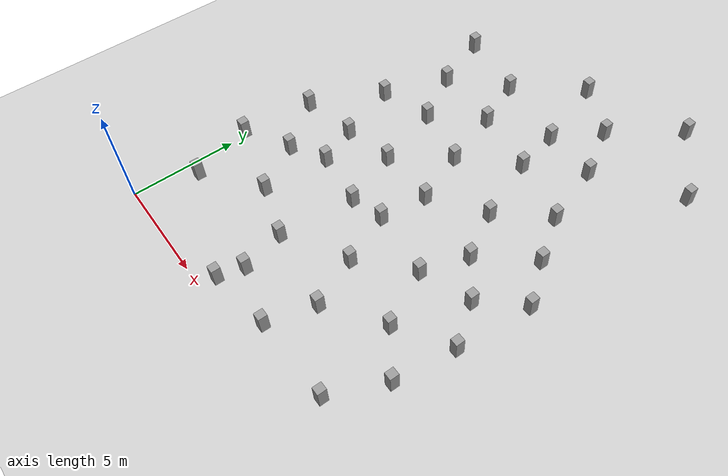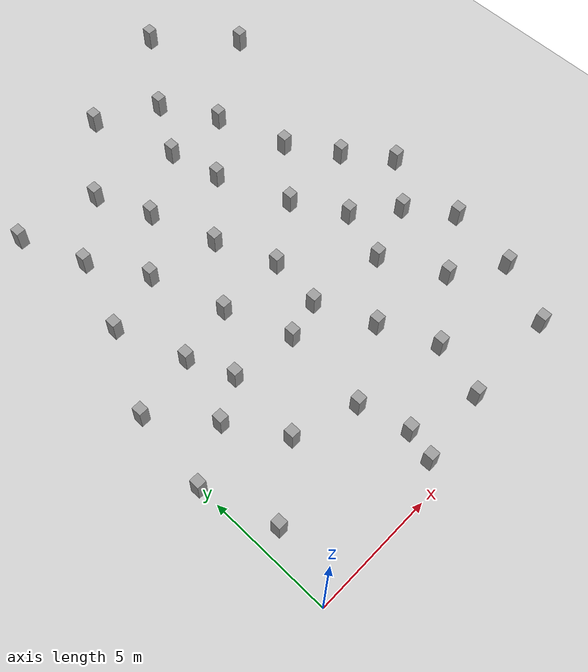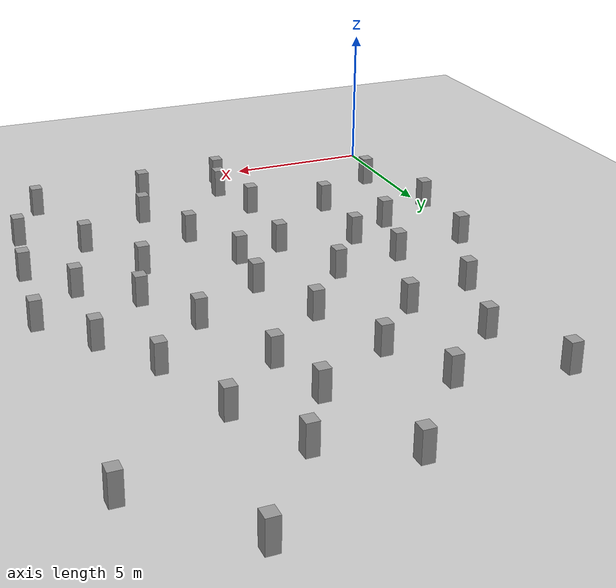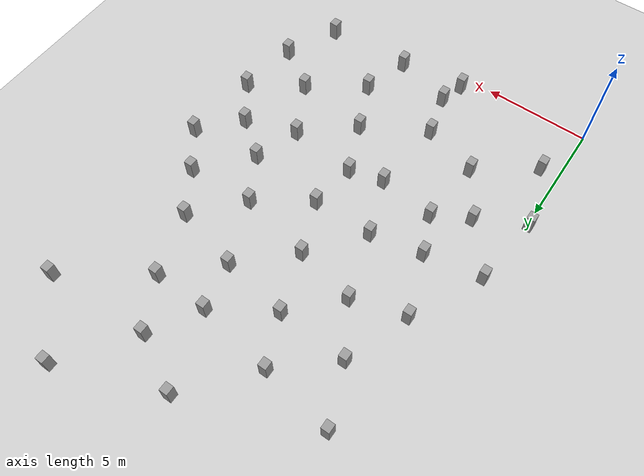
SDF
<sdf version="1.10">
 <world name="obstacle_field">
  <model name="ground_plane">
   <static>true</static>
   <link name="link">
    <collision name="collision">
     <geometry><plane><normal>0 0 1</normal><size>100 100</size></plane></geometry>
     <surface>
      <friction><ode><mu>1000</mu><mu2>1000</mu2><slip1>0</slip1><slip2>0</slip2></ode></friction>
      <bounce><restitution_coefficient>0</restitution_coefficient></bounce>
     </surface>
    </collision>
    <visual name="visual">
     <cast_shadows>false</cast_shadows>
     <geometry><plane><normal>0 0 1</normal><size>100 100</size></plane></geometry>
     <material>
      <script><uri>file://media/materials/scripts/gazebo.material</uri><name>Gazebo/Grey</name></script>
     </material>
    </visual>
    <inertial>
     <mass>1</mass>
     <inertia><ixx>1</ixx><ixy>0</ixy><ixz>0</ixz><iyy>1</iyy><iyz>0</iyz><izz>1</izz></inertia>
    </inertial>
   </link>
  </model>
  <model name="unit_box_0_clone_1">
   <static>true</static>
   <pose>6.2657436504736737 0.77969248417705894 0.50000007797714363 -1.6275317496910021e-11 -4.3435819184663048e-07 -0.00050313957710125773</pose>
   <link name="link">
    <inertial>
     <mass>1</mass>
     <inertia>
      <ixx>0.16666700000000001</ixx>
      <ixy>0</ixy>
      <ixz>0</ixz>
      <iyy>0.16666700000000001</iyy>
      <iyz>0</iyz>
      <izz>0.16666700000000001</izz>
     </inertia>
    </inertial>
    <collision name="collision">
     <geometry><box><size>0.392878 0.42264299999999999 1</size></box></geometry>
    </collision>
    <visual name="visual">
     <geometry><box><size>0.392878 0.42264299999999999 1</size></box></geometry>
     <material>
      <script><name>Gazebo/Grey</name><uri>file://media/materials/scripts/gazebo.material</uri></script>
     </material>
    </visual>
   </link>
  </model>
  <model name="unit_box_0_clone_5">
   <static>true</static>
   <pose>6.5936288833618164 1.9747054576873777 0.50000000000000011 1.4519074795443774e-11 5.7575513409192599e-07 -0.00056817313018064084</pose>
   <link name="link">
    <inertial>
     <mass>1</mass>
     <inertia>
      <ixx>0.16666700000000001</ixx>
      <ixy>0</ixy>
      <ixz>0</ixz>
      <iyy>0.16666700000000001</iyy>
      <iyz>0</iyz>
      <izz>0.16666700000000001</izz>
     </inertia>
    </inertial>
    <collision name="collision">
     <geometry><box><size>0.392878 0.42264299999999999 1</size></box></geometry>
    </collision>
    <visual name="visual">
     <geometry><box><size>0.392878 0.42264299999999999 1</size></box></geometry>
     <material>
      <script><name>Gazebo/Grey</name><uri>file://media/materials/scripts/gazebo.material</uri></script>
     </material>
    </visual>
   </link>
  </model>
  <model name="unit_box_0_clone_5_clone">
   <static>true</static>
   <pose>9.3323705005976016 1.1743509997080097 0.49999999632621162 5.2793814997311371e-13 -5.7080690061872796e-13 -0.00059524702849138831</pose>
   <link name="link">
    <inertial>
     <mass>1</mass>
     <inertia>
      <ixx>0.16666700000000001</ixx>
      <ixy>0</ixy>
      <ixz>0</ixz>
      <iyy>0.16666700000000001</iyy>
      <iyz>0</iyz>
      <izz>0.16666700000000001</izz>
     </inertia>
    </inertial>
    <collision name="collision">
     <geometry><box><size>0.392878 0.42264299999999999 1</size></box></geometry>
    </collision>
    <visual name="visual">
     <geometry><box><size>0.392878 0.42264299999999999 1</size></box></geometry>
     <material>
      <script><name>Gazebo/Grey</name><uri>file://media/materials/scripts/gazebo.material</uri></script>
     </material>
    </visual>
   </link>
  </model>
  <model name="unit_box_0_clone_5_clone_0">
   <static>true</static>
   <pose>6.0699167251586905 3.9886112213134766 0.49999880790710455 -6.4980011606417069e-08 -1.2996003264999317e-07 -0.00059701014650511103</pose>
   <link name="link">
    <inertial>
     <mass>1</mass>
     <inertia>
      <ixx>0.16666700000000001</ixx>
      <ixy>0</ixy>
      <ixz>0</ixz>
      <iyy>0.16666700000000001</iyy>
      <iyz>0</iyz>
      <izz>0.16666700000000001</izz>
     </inertia>
    </inertial>
    <collision name="collision">
     <geometry><box><size>0.392878 0.42264299999999999 1</size></box></geometry>
    </collision>
    <visual name="visual">
     <geometry><box><size>0.392878 0.42264299999999999 1</size></box></geometry>
     <material>
      <script><name>Gazebo/Grey</name><uri>file://media/materials/scripts/gazebo.material</uri></script>
     </material>
    </visual>
   </link>
  </model>
  <model name="unit_box_0_clone_5_clone_2_clone">
   <static>true</static>
   <pose>13.357701301574707 1.3140759468078616 0.50000154972076394 5.3031405220818341e-07 1.6416701695930004e-07 -0.00069378602791120086</pose>
   <link name="link">
    <inertial>
     <mass>1</mass>
     <inertia>
      <ixx>0.16666700000000001</ixx>
      <ixy>0</ixy>
      <ixz>0</ixz>
      <iyy>0.16666700000000001</iyy>
      <iyz>0</iyz>
      <izz>0.16666700000000001</izz>
     </inertia>
    </inertial>
    <collision name="collision">
     <geometry><box><size>0.392878 0.42264299999999999 1</size></box></geometry>
    </collision>
    <visual name="visual">
     <geometry><box><size>0.392878 0.42264299999999999 1</size></box></geometry>
     <material>
      <script><name>Gazebo/Grey</name><uri>file://media/materials/scripts/gazebo.material</uri></script>
     </material>
    </visual>
   </link>
  </model>
  <model name="unit_box_0_clone_5_clone_2_clone_4">
   <static>true</static>
   <pose>14.512412071228029 3.8057172298431405 0.49999919533729553 -1.4207401016797583e-07 -5.6431707507392635e-08 -0.00075502010828045992</pose>
   <link name="link">
    <inertial>
     <mass>1</mass>
     <inertia>
      <ixx>0.16666700000000001</ixx>
      <ixy>0</ixy>
      <ixz>0</ixz>
      <iyy>0.16666700000000001</iyy>
      <iyz>0</iyz>
      <izz>0.16666700000000001</izz>
     </inertia>
    </inertial>
    <collision name="collision">
     <geometry><box><size>0.392878 0.42264299999999999 1</size></box></geometry>
    </collision>
    <visual name="visual">
     <geometry><box><size>0.392878 0.42264299999999999 1</size></box></geometry>
     <material>
      <script><name>Gazebo/Grey</name><uri>file://media/materials/scripts/gazebo.material</uri></script>
     </material>
    </visual>
   </link>
  </model>
  <model name="unit_box_0_clone_5_clone_2_clone_6">
   <static>true</static>
   <pose>9.9725370407104474 3.414785623550415 0.49999925494194025 -1.0111800399782683e-07 -2.2782001280568572e-07 -0.00061600903908471728</pose>
   <link name="link">
    <inertial>
     <mass>1</mass>
     <inertia>
      <ixx>0.16666700000000001</ixx>
      <ixy>0</ixy>
      <ixz>0</ixz>
      <iyy>0.16666700000000001</iyy>
      <iyz>0</iyz>
      <izz>0.16666700000000001</izz>
     </inertia>
    </inertial>
    <collision name="collision">
     <geometry><box><size>0.392878 0.42264299999999999 1</size></box></geometry>
    </collision>
    <visual name="visual">
     <geometry><box><size>0.392878 0.42264299999999999 1</size></box></geometry>
     <material>
      <script><name>Gazebo/Grey</name><uri>file://media/materials/scripts/gazebo.material</uri></script>
     </material>
    </visual>
   </link>
  </model>
  <model name="unit_box_0_clone_5_clone_2_clone_1_clone_12_clone">
   <static>true</static>
   <pose>8.9821994995991616 5.6659995003911803 0.49999999632620984 -5.3647321036996375e-13 5.7486298194397711e-13 -0.00079258288375717531</pose>
   <link name="link">
    <inertial>
     <mass>1</mass>
     <inertia>
      <ixx>0.16666700000000001</ixx>
      <ixy>0</ixy>
      <ixz>0</ixz>
      <iyy>0.16666700000000001</iyy>
      <iyz>0</iyz>
      <izz>0.16666700000000001</izz>
     </inertia>
    </inertial>
    <collision name="collision">
     <geometry><box><size>0.392878 0.42264299999999999 1</size></box></geometry>
    </collision>
    <visual name="visual">
     <geometry><box><size>0.392878 0.42264299999999999 1</size></box></geometry>
     <material>
      <script><name>Gazebo/Grey</name><uri>file://media/materials/scripts/gazebo.material</uri></script>
     </material>
    </visual>
   </link>
  </model>
  <model name="unit_box_0_clone_5_clone_2_clone_1_clone_12_clone_0">
   <static>true</static>
   <pose>11.232299499207203 7.6263990003841595 0.49999999632621162 -5.3284593403060476e-13 5.6859901922787468e-13 -0.00078857408980502919</pose>
   <link name="link">
    <inertial>
     <mass>1</mass>
     <inertia>
      <ixx>0.16666700000000001</ixx>
      <ixy>0</ixy>
      <ixz>0</ixz>
      <iyy>0.16666700000000001</iyy>
      <iyz>0</iyz>
      <izz>0.16666700000000001</izz>
     </inertia>
    </inertial>
    <collision name="collision">
     <geometry><box><size>0.392878 0.42264299999999999 1</size></box></geometry>
    </collision>
    <visual name="visual">
     <geometry><box><size>0.392878 0.42264299999999999 1</size></box></geometry>
     <material>
      <script><name>Gazebo/Grey</name><uri>file://media/materials/scripts/gazebo.material</uri></script>
     </material>
    </visual>
   </link>
  </model>
  <model name="unit_box_0_clone_5_clone_2_clone_1_clone_12_clone_1">
   <static>true</static>
   <pose>8.0000010004007294 8.0000004992226383 0.49999999632621162 5.3360800315507531e-13 -5.7750973295664675e-13 -0.00078256106634871578</pose>
   <link name="link">
    <inertial>
     <mass>1</mass>
     <inertia>
      <ixx>0.16666700000000001</ixx>
      <ixy>0</ixy>
      <ixz>0</ixz>
      <iyy>0.16666700000000001</iyy>
      <iyz>0</iyz>
      <izz>0.16666700000000001</izz>
     </inertia>
    </inertial>
    <collision name="collision">
     <geometry><box><size>0.392878 0.42264299999999999 1</size></box></geometry>
    </collision>
    <visual name="visual">
     <geometry><box><size>0.392878 0.42264299999999999 1</size></box></geometry>
     <material>
      <script><name>Gazebo/Grey</name><uri>file://media/materials/scripts/gazebo.material</uri></script>
     </material>
    </visual>
   </link>
  </model>
  <model name="unit_box_0_clone_5_clone_2_clone_1_clone_12_clone_2">
   <static>true</static>
   <pose>11.942601000394943 9.7839104992335333 0.49999999632621162 5.3619946354806981e-13 -5.6966116221189122e-13 -0.00077153770491132374</pose>
   <link name="link">
    <inertial>
     <mass>1</mass>
     <inertia>
      <ixx>0.16666700000000001</ixx>
      <ixy>0</ixy>
      <ixz>0</ixz>
      <iyy>0.16666700000000001</iyy>
      <iyz>0</iyz>
      <izz>0.16666700000000001</izz>
     </inertia>
    </inertial>
    <collision name="collision">
     <geometry><box><size>0.392878 0.42264299999999999 1</size></box></geometry>
    </collision>
    <visual name="visual">
     <geometry><box><size>0.392878 0.42264299999999999 1</size></box></geometry>
     <material>
      <script><name>Gazebo/Grey</name><uri>file://media/materials/scripts/gazebo.material</uri></script>
     </material>
    </visual>
   </link>
  </model>
  <model name="unit_box_0_clone_5_clone_2_clone_1_clone_12_clone_5">
   <static>true</static>
   <pose>14.920901001522996 6.663131999258403 0.49999999632621001 5.3630661169372259e-13 -5.6729505497022143e-13 -0.00075851093868693059</pose>
   <link name="link">
    <inertial>
     <mass>1</mass>
     <inertia>
      <ixx>0.16666700000000001</ixx>
      <ixy>0</ixy>
      <ixz>0</ixz>
      <iyy>0.16666700000000001</iyy>
      <iyz>0</iyz>
      <izz>0.16666700000000001</izz>
     </inertia>
    </inertial>
    <collision name="collision">
     <geometry><box><size>0.392878 0.42264299999999999 1</size></box></geometry>
    </collision>
    <visual name="visual">
     <geometry><box><size>0.392878 0.42264299999999999 1</size></box></geometry>
     <material>
      <script><name>Gazebo/Grey</name><uri>file://media/materials/scripts/gazebo.material</uri></script>
     </material>
    </visual>
   </link>
  </model>
  <model name="unit_box_0_clone_5_clone_2_clone_1_clone_12_clone_7">
   <static>true</static>
   <pose>7.3004302978515625 12.65896511077881 0.49998185038566578 1.4009700984735096e-06 -1.9607301620356381e-06 -0.00074300406336154769</pose>
   <link name="link">
    <inertial>
     <mass>1</mass>
     <inertia>
      <ixx>0.16666700000000001</ixx>
      <ixy>0</ixy>
      <ixz>0</ixz>
      <iyy>0.16666700000000001</iyy>
      <iyz>0</iyz>
      <izz>0.16666700000000001</izz>
     </inertia>
    </inertial>
    <collision name="collision">
     <geometry><box><size>0.392878 0.42264299999999999 1</size></box></geometry>
    </collision>
    <visual name="visual">
     <geometry><box><size>0.392878 0.42264299999999999 1</size></box></geometry>
     <material>
      <script><name>Gazebo/Grey</name><uri>file://media/materials/scripts/gazebo.material</uri></script>
     </material>
    </visual>
   </link>
  </model>
  <model name="unit_box_0_clone_5_clone_2_clone_1_clone_12_clone_32">
   <static>true</static>
   <pose>12.524538040161133 5.1650052070617685 0.49997285008430487 -1.3707601376378838e-06 -1.9236901632101691e-06 -0.00072800405564673579</pose>
   <link name="link">
    <inertial>
     <mass>1</mass>
     <inertia>
      <ixx>0.16666700000000001</ixx>
      <ixy>0</ixy>
      <ixz>0</ixz>
      <iyy>0.16666700000000001</iyy>
      <iyz>0</iyz>
      <izz>0.16666700000000001</izz>
     </inertia>
    </inertial>
    <collision name="collision">
     <geometry><box><size>0.392878 0.42264299999999999 1</size></box></geometry>
    </collision>
    <visual name="visual">
     <geometry><box><size>0.392878 0.42264299999999999 1</size></box></geometry>
     <material>
      <script><name>Gazebo/Grey</name><uri>file://media/materials/scripts/gazebo.material</uri></script>
     </material>
    </visual>
   </link>
  </model>
  <model name="unit_box_0_clone_5_clone_2_clone_1_clone_12_clone_42">
   <static>true</static>
   <pose>3.4964911146828856 4.7998195501831429 0.49999991137006861 -1.0214082627106175e-07 2.3012329665167675e-07 -0.00079101881016747097</pose>
   <link name="link">
    <inertial>
     <mass>1</mass>
     <inertia>
      <ixx>0.16666700000000001</ixx>
      <ixy>0</ixy>
      <ixz>0</ixz>
      <iyy>0.16666700000000001</iyy>
      <iyz>0</iyz>
      <izz>0.16666700000000001</izz>
     </inertia>
    </inertial>
    <collision name="collision">
     <geometry><box><size>0.392878 0.42264299999999999 1</size></box></geometry>
    </collision>
    <visual name="visual">
     <geometry><box><size>0.392878 0.42264299999999999 1</size></box></geometry>
     <material>
      <script><name>Gazebo/Grey</name><uri>file://media/materials/scripts/gazebo.material</uri></script>
     </material>
    </visual>
   </link>
  </model>
  <model name="unit_box_0_clone_5_clone_2_clone_1_clone_12_clone_43">
   <static>true</static>
   <pose>6.4073395008018883 7.5782010004138494 0.49999999632621162 5.3324726528305473e-13 5.749989376156238e-13 -0.00080761666104334738</pose>
   <link name="link">
    <inertial>
     <mass>1</mass>
     <inertia>
      <ixx>0.16666700000000001</ixx>
      <ixy>0</ixy>
      <ixz>0</ixz>
      <iyy>0.16666700000000001</iyy>
      <iyz>0</iyz>
      <izz>0.16666700000000001</izz>
     </inertia>
    </inertial>
    <collision name="collision">
     <geometry><box><size>0.392878 0.42264299999999999 1</size></box></geometry>
    </collision>
    <visual name="visual">
     <geometry><box><size>0.392878 0.42264299999999999 1</size></box></geometry>
     <material>
      <script><name>Gazebo/Grey</name><uri>file://media/materials/scripts/gazebo.material</uri></script>
     </material>
    </visual>
   </link>
  </model>
  <model name="unit_box_0_clone_5_clone_2_clone_1_clone_12_clone_44">
   <static>true</static>
   <pose>3.7579500012270137 7.9207315000161067 0.49999999632621167 5.3637849946104813e-13 1.3830856559574883e-14 -0.00081864224207135532</pose>
   <link name="link">
    <inertial>
     <mass>1</mass>
     <inertia>
      <ixx>0.16666700000000001</ixx>
      <ixy>0</ixy>
      <ixz>0</ixz>
      <iyy>0.16666700000000001</iyy>
      <iyz>0</iyz>
      <izz>0.16666700000000001</izz>
     </inertia>
    </inertial>
    <collision name="collision">
     <geometry><box><size>0.392878 0.42264299999999999 1</size></box></geometry>
    </collision>
    <visual name="visual">
     <geometry><box><size>0.392878 0.42264299999999999 1</size></box></geometry>
     <material>
      <script><name>Gazebo/Grey</name><uri>file://media/materials/scripts/gazebo.material</uri></script>
     </material>
    </visual>
   </link>
  </model>
  <model name="unit_box_0_clone_5_clone_2_clone_1_clone_12_clone_45">
   <static>true</static>
   <pose>8.2731595008177425 10.215901000422265 0.49999999632621162 5.2878707308363834e-13 5.7475724972589635e-13 -0.00082365410174699272</pose>
   <link name="link">
    <inertial>
     <mass>1</mass>
     <inertia>
      <ixx>0.16666700000000001</ixx>
      <ixy>0</ixy>
      <ixz>0</ixz>
      <iyy>0.16666700000000001</iyy>
      <iyz>0</iyz>
      <izz>0.16666700000000001</izz>
     </inertia>
    </inertial>
    <collision name="collision">
     <geometry><box><size>0.392878 0.42264299999999999 1</size></box></geometry>
    </collision>
    <visual name="visual">
     <geometry><box><size>0.392878 0.42264299999999999 1</size></box></geometry>
     <material>
      <script><name>Gazebo/Grey</name><uri>file://media/materials/scripts/gazebo.material</uri></script>
     </material>
    </visual>
   </link>
  </model>
  <model name="unit_box_0_clone_5_clone_2_clone_1_clone_12_clone_46">
   <static>true</static>
   <pose>5.4269299987535122 10.214698499983404 0.49999999632621167 -5.3231316036218239e-13 -1.4504192305665496e-14 -0.00083167337703285253</pose>
   <link name="link">
    <inertial>
     <mass>1</mass>
     <inertia>
      <ixx>0.16666700000000001</ixx>
      <ixy>0</ixy>
      <ixz>0</ixz>
      <iyy>0.16666700000000001</iyy>
      <iyz>0</iyz>
      <izz>0.16666700000000001</izz>
     </inertia>
    </inertial>
    <collision name="collision">
     <geometry><box><size>0.392878 0.42264299999999999 1</size></box></geometry>
    </collision>
    <visual name="visual">
     <geometry><box><size>0.392878 0.42264299999999999 1</size></box></geometry>
     <material>
      <script><name>Gazebo/Grey</name><uri>file://media/materials/scripts/gazebo.material</uri></script>
     </material>
    </visual>
   </link>
  </model>
  <model name="unit_box_0_clone_5_clone_2_clone_1_clone_12_clone_13_clone">
   <static>true</static>
   <pose>15.288198499390868 10.223198500602853 0.49999999632621051 -5.2769447487419605e-13 5.7025126058812261e-13 -0.00040407729822959112</pose>
   <link name="link">
    <inertial>
     <mass>1</mass>
     <inertia>
      <ixx>0.16666700000000001</ixx>
      <ixy>0</ixy>
      <ixz>0</ixz>
      <iyy>0.16666700000000001</iyy>
      <iyz>0</iyz>
      <izz>0.16666700000000001</izz>
     </inertia>
    </inertial>
    <collision name="collision">
     <geometry><box><size>0.392878 0.42264299999999999 1</size></box></geometry>
    </collision>
    <visual name="visual">
     <geometry><box><size>0.392878 0.42264299999999999 1</size></box></geometry>
     <material>
      <script><name>Gazebo/Grey</name><uri>file://media/materials/scripts/gazebo.material</uri></script>
     </material>
    </visual>
   </link>
  </model>
  <model name="unit_box_0_clone_5_clone_2_clone_1_clone_12_clone_13_clone_14">
   <static>true</static>
   <pose>13.646501000179812 8.4495604996447309 0.49999999632621162 5.3172888879950636e-13 -5.6795361903593215e-13 -0.00035605288904595999</pose>
   <link name="link">
    <inertial>
     <mass>1</mass>
     <inertia>
      <ixx>0.16666700000000001</ixx>
      <ixy>0</ixy>
      <ixz>0</ixz>
      <iyy>0.16666700000000001</iyy>
      <iyz>0</iyz>
      <izz>0.16666700000000001</izz>
     </inertia>
    </inertial>
    <collision name="collision">
     <geometry><box><size>0.392878 0.42264299999999999 1</size></box></geometry>
    </collision>
    <visual name="visual">
     <geometry><box><size>0.392878 0.42264299999999999 1</size></box></geometry>
     <material>
      <script><name>Gazebo/Grey</name><uri>file://media/materials/scripts/gazebo.material</uri></script>
     </material>
    </visual>
   </link>
  </model>
  <model name="unit_box_0_clone_5_clone_2_clone_1_clone_12_clone_13_clone_15">
   <static>true</static>
   <pose>13.926002000350211 12.043700999307257 0.49999999632621156 5.3480945032059843e-13 -5.7447730007873074e-13 -0.00034704897654339598</pose>
   <link name="link">
    <inertial>
     <mass>1</mass>
     <inertia>
      <ixx>0.16666700000000001</ixx>
      <ixy>0</ixy>
      <ixz>0</ixz>
      <iyy>0.16666700000000001</iyy>
      <iyz>0</iyz>
      <izz>0.16666700000000001</izz>
     </inertia>
    </inertial>
    <collision name="collision">
     <geometry><box><size>0.392878 0.42264299999999999 1</size></box></geometry>
    </collision>
    <visual name="visual">
     <geometry><box><size>0.392878 0.42264299999999999 1</size></box></geometry>
     <material>
      <script><name>Gazebo/Grey</name><uri>file://media/materials/scripts/gazebo.material</uri></script>
     </material>
    </visual>
   </link>
  </model>
  <model name="unit_box_0_clone_5_clone_2_clone_1_clone_12_clone_13_clone_16">
   <static>true</static>
   <pose>10.735701000695252 11.877701999656198 0.49999999632620995 5.3337369665107648e-13 -5.7132845563975111e-13 -0.00034704897244808433</pose>
   <link name="link">
    <inertial>
     <mass>1</mass>
     <inertia>
      <ixx>0.16666700000000001</ixx>
      <ixy>0</ixy>
      <ixz>0</ixz>
      <iyy>0.16666700000000001</iyy>
      <iyz>0</iyz>
      <izz>0.16666700000000001</izz>
     </inertia>
    </inertial>
    <collision name="collision">
     <geometry><box><size>0.392878 0.42264299999999999 1</size></box></geometry>
    </collision>
    <visual name="visual">
     <geometry><box><size>0.392878 0.42264299999999999 1</size></box></geometry>
     <material>
      <script><name>Gazebo/Grey</name><uri>file://media/materials/scripts/gazebo.material</uri></script>
     </material>
    </visual>
   </link>
  </model>
  <model name="unit_box_0_clone_5_clone_2_clone_1_clone_12_clone_13_clone_11">
   <static>true</static>
   <pose>12.643399500039219 14.036800500038725 0.49999999632620984 5.3345711205326479e-13 5.7388034953694342e-13 -7.8000556715596608e-05</pose>
   <link name="link">
    <inertial>
     <mass>1</mass>
     <inertia>
      <ixx>0.16666700000000001</ixx>
      <ixy>0</ixy>
      <ixz>0</ixz>
      <iyy>0.16666700000000001</iyy>
      <iyz>0</iyz>
      <izz>0.16666700000000001</izz>
     </inertia>
    </inertial>
    <collision name="collision">
     <geometry><box><size>0.392878 0.42264299999999999 1</size></box></geometry>
    </collision>
    <visual name="visual">
     <geometry><box><size>0.392878 0.42264299999999999 1</size></box></geometry>
     <material>
      <script><name>Gazebo/Grey</name><uri>file://media/materials/scripts/gazebo.material</uri></script>
     </material>
    </visual>
   </link>
  </model>
  <model name="unit_box_0_clone_5_clone_2_clone_1_clone_12_clone_13_clone_28">
   <static>true</static>
   <pose>9.547730499918778 14.859598999959712 0.49999999632621162 -5.3428732410458437e-13 -5.7036266165558847e-13 -8.1000623926185745e-05</pose>
   <link name="link">
    <inertial>
     <mass>1</mass>
     <inertia>
      <ixx>0.16666700000000001</ixx>
      <ixy>0</ixy>
      <ixz>0</ixz>
      <iyy>0.16666700000000001</iyy>
      <iyz>0</iyz>
      <izz>0.16666700000000001</izz>
     </inertia>
    </inertial>
    <collision name="collision">
     <geometry><box><size>0.392878 0.42264299999999999 1</size></box></geometry>
    </collision>
    <visual name="visual">
     <geometry><box><size>0.392878 0.42264299999999999 1</size></box></geometry>
     <material>
      <script><name>Gazebo/Grey</name><uri>file://media/materials/scripts/gazebo.material</uri></script>
     </material>
    </visual>
   </link>
  </model>
  <model name="unit_box_0_clone_5_clone_2_clone_1_clone_12_clone_13_clone_50">
   <static>true</static>
   <pose>0.85602056145324557 2.8650628048964313 0.49999991312564068 3.3647760914909713e-09 2.5287479178355659e-09 -0.00016000481654438443</pose>
   <link name="link">
    <inertial>
     <mass>1</mass>
     <inertia>
      <ixx>0.16666700000000001</ixx>
      <ixy>0</ixy>
      <ixz>0</ixz>
      <iyy>0.16666700000000001</iyy>
      <iyz>0</iyz>
      <izz>0.16666700000000001</izz>
     </inertia>
    </inertial>
    <collision name="collision">
     <geometry><box><size>0.392878 0.42264299999999999 1</size></box></geometry>
    </collision>
    <visual name="visual">
     <geometry><box><size>0.392878 0.42264299999999999 1</size></box></geometry>
     <material>
      <script><name>Gazebo/Grey</name><uri>file://media/materials/scripts/gazebo.material</uri></script>
     </material>
    </visual>
   </link>
  </model>
  <model name="unit_box_0_clone_5_clone_2_clone_1_clone_12_clone_13_clone_51">
   <static>true</static>
   <pose>2.127969000327985 6.9942020001644822 0.49999999632620995 5.3094330337904799e-13 5.7202125579093984e-13 -0.00016400517627406612</pose>
   <link name="link">
    <inertial>
     <mass>1</mass>
     <inertia>
      <ixx>0.16666700000000001</ixx>
      <ixy>0</ixy>
      <ixz>0</ixz>
      <iyy>0.16666700000000001</iyy>
      <iyz>0</iyz>
      <izz>0.16666700000000001</izz>
     </inertia>
    </inertial>
    <collision name="collision">
     <geometry><box><size>0.392878 0.42264299999999999 1</size></box></geometry>
    </collision>
    <visual name="visual">
     <geometry><box><size>0.392878 0.42264299999999999 1</size></box></geometry>
     <material>
      <script><name>Gazebo/Grey</name><uri>file://media/materials/scripts/gazebo.material</uri></script>
     </material>
    </visual>
   </link>
  </model>
  <model name="unit_box_0_clone_5_clone_2_clone_1_clone_12_clone_13_clone_52">
   <static>true</static>
   <pose>3.0064895001640823 9.7206410000821304 0.49999999632621162 5.3025598981966204e-13 5.7706687666036585e-13 -0.00016400517094457758</pose>
   <link name="link">
    <inertial>
     <mass>1</mass>
     <inertia>
      <ixx>0.16666700000000001</ixx>
      <ixy>0</ixy>
      <ixz>0</ixz>
      <iyy>0.16666700000000001</iyy>
      <iyz>0</iyz>
      <izz>0.16666700000000001</izz>
     </inertia>
    </inertial>
    <collision name="collision">
     <geometry><box><size>0.392878 0.42264299999999999 1</size></box></geometry>
    </collision>
    <visual name="visual">
     <geometry><box><size>0.392878 0.42264299999999999 1</size></box></geometry>
     <material>
      <script><name>Gazebo/Grey</name><uri>file://media/materials/scripts/gazebo.material</uri></script>
     </material>
    </visual>
   </link>
  </model>
  <model name="unit_box_0_clone_5_clone_2_clone_1_clone_12_clone_13_clone_53">
   <static>true</static>
   <pose>4.4691519997544846 13.275998499671825 0.49999999632621067 -5.3253163205396491e-13 -5.7053971584299667e-13 -0.00016400517495651585</pose>
   <link name="link">
    <inertial>
     <mass>1</mass>
     <inertia>
      <ixx>0.16666700000000001</ixx>
      <ixy>0</ixy>
      <ixz>0</ixz>
      <iyy>0.16666700000000001</iyy>
      <iyz>0</iyz>
      <izz>0.16666700000000001</izz>
     </inertia>
    </inertial>
    <collision name="collision">
     <geometry><box><size>0.392878 0.42264299999999999 1</size></box></geometry>
    </collision>
    <visual name="visual">
     <geometry><box><size>0.392878 0.42264299999999999 1</size></box></geometry>
     <material>
      <script><name>Gazebo/Grey</name><uri>file://media/materials/scripts/gazebo.material</uri></script>
     </material>
    </visual>
   </link>
  </model>
  <model name="unit_box_0_clone_5_clone_2_clone_1_clone_12_clone_13_clone_54">
   <static>true</static>
   <pose>6.4051190003278986 15.385902000164434 0.49999999632620995 5.3094315722373402e-13 5.7201973443328702e-13 -0.00016400517627406595</pose>
   <link name="link">
    <inertial>
     <mass>1</mass>
     <inertia>
      <ixx>0.16666700000000001</ixx>
      <ixy>0</ixy>
      <ixz>0</ixz>
      <iyy>0.16666700000000001</iyy>
      <iyz>0</iyz>
      <izz>0.16666700000000001</izz>
     </inertia>
    </inertial>
    <collision name="collision">
     <geometry><box><size>0.392878 0.42264299999999999 1</size></box></geometry>
    </collision>
    <visual name="visual">
     <geometry><box><size>0.392878 0.42264299999999999 1</size></box></geometry>
     <material>
      <script><name>Gazebo/Grey</name><uri>file://media/materials/scripts/gazebo.material</uri></script>
     </material>
    </visual>
   </link>
  </model>
  <model name="unit_box_0_clone_5_clone_2_clone_1_clone_12_clone_13_clone_55">
   <static>true</static>
   <pose>11.690300999668057 16.970197999833186 0.49999999632620995 -5.3273167757785956e-13 -5.7176937348012523e-13 -0.00016600536773818064</pose>
   <link name="link">
    <inertial>
     <mass>1</mass>
     <inertia>
      <ixx>0.16666700000000001</ixx>
      <ixy>0</ixy>
      <ixz>0</ixz>
      <iyy>0.16666700000000001</iyy>
      <iyz>0</iyz>
      <izz>0.16666700000000001</izz>
     </inertia>
    </inertial>
    <collision name="collision">
     <geometry><box><size>0.392878 0.42264299999999999 1</size></box></geometry>
    </collision>
    <visual name="visual">
     <geometry><box><size>0.392878 0.42264299999999999 1</size></box></geometry>
     <material>
      <script><name>Gazebo/Grey</name><uri>file://media/materials/scripts/gazebo.material</uri></script>
     </material>
    </visual>
   </link>
  </model>
  <model name="unit_box_0_clone_5_clone_2_clone_1_clone_12_clone_13_clone_68">
   <static>true</static>
   <pose>-0.073402999781999934 5.8226310000004871 0.49999999632620978 5.3616162941209065e-13 1.7981183318364764e-16 -0.00021801214321377763</pose>
   <link name="link">
    <inertial>
     <mass>1</mass>
     <inertia>
      <ixx>0.16666700000000001</ixx>
      <ixy>0</ixy>
      <ixz>0</ixz>
      <iyy>0.16666700000000001</iyy>
      <iyz>0</iyz>
      <izz>0.16666700000000001</izz>
     </inertia>
    </inertial>
    <collision name="collision">
     <geometry><box><size>0.392878 0.42264299999999999 1</size></box></geometry>
    </collision>
    <visual name="visual">
     <geometry><box><size>0.392878 0.42264299999999999 1</size></box></geometry>
     <material>
      <script><name>Gazebo/Grey</name><uri>file://media/materials/scripts/gazebo.material</uri></script>
     </material>
    </visual>
   </link>
  </model>
  <model name="unit_box_0_clone_5_clone_2_clone_1_clone_12_clone_13_clone_69">
   <static>true</static>
   <pose>0.34026949977811405 9.2201289998885034 0.49999999632621162 -5.3077854673032423e-13 -5.7209508243760987e-13 -0.00022201282509552153</pose>
   <link name="link">
    <inertial>
     <mass>1</mass>
     <inertia>
      <ixx>0.16666700000000001</ixx>
      <ixy>0</ixy>
      <ixz>0</ixz>
      <iyy>0.16666700000000001</iyy>
      <iyz>0</iyz>
      <izz>0.16666700000000001</izz>
     </inertia>
    </inertial>
    <collision name="collision">
     <geometry><box><size>0.392878 0.42264299999999999 1</size></box></geometry>
    </collision>
    <visual name="visual">
     <geometry><box><size>0.392878 0.42264299999999999 1</size></box></geometry>
     <material>
      <script><name>Gazebo/Grey</name><uri>file://media/materials/scripts/gazebo.material</uri></script>
     </material>
    </visual>
   </link>
  </model>
  <model name="unit_box_0_clone_5_clone_2_clone_1_clone_12_clone_13_clone_70">
   <static>true</static>
   <pose>2.0042095003418772 12.540901500114936 0.49999999632621078 5.2914627715072209e-13 5.7139694200659904e-13 -0.00022801389384564976</pose>
   <link name="link">
    <inertial>
     <mass>1</mass>
     <inertia>
      <ixx>0.16666700000000001</ixx>
      <ixy>0</ixy>
      <ixz>0</ixz>
      <iyy>0.16666700000000001</iyy>
      <iyz>0</iyz>
      <izz>0.16666700000000001</izz>
     </inertia>
    </inertial>
    <collision name="collision">
     <geometry><box><size>0.392878 0.42264299999999999 1</size></box></geometry>
    </collision>
    <visual name="visual">
     <geometry><box><size>0.392878 0.42264299999999999 1</size></box></geometry>
     <material>
      <script><name>Gazebo/Grey</name><uri>file://media/materials/scripts/gazebo.material</uri></script>
     </material>
    </visual>
   </link>
  </model>
  <model name="unit_box_0_clone_5_clone_2_clone_1_clone_12_clone_13_clone_71">
   <static>true</static>
   <pose>3.0982319996471697 15.558598499527296 0.49999999632621067 -5.2913813564068977e-13 -5.6783551712107122e-13 -0.0002360154116743979</pose>
   <link name="link">
    <inertial>
     <mass>1</mass>
     <inertia>
      <ixx>0.16666700000000001</ixx>
      <ixy>0</ixy>
      <ixz>0</ixz>
      <iyy>0.16666700000000001</iyy>
      <iyz>0</iyz>
      <izz>0.16666700000000001</izz>
     </inertia>
    </inertial>
    <collision name="collision">
     <geometry><box><size>0.392878 0.42264299999999999 1</size></box></geometry>
    </collision>
    <visual name="visual">
     <geometry><box><size>0.392878 0.42264299999999999 1</size></box></geometry>
     <material>
      <script><name>Gazebo/Grey</name><uri>file://media/materials/scripts/gazebo.material</uri></script>
     </material>
    </visual>
   </link>
  </model>
  <model name="unit_box_0_clone_5_clone_2_clone_1_clone_12_clone_13_clone_72">
   <static>true</static>
   <pose>9.0798795002417805 17.038501000121933 0.49999999632621162 5.3114659449307665e-13 5.7788800437786211e-13 -0.00024201661294317715</pose>
   <link name="link">
    <inertial>
     <mass>1</mass>
     <inertia>
      <ixx>0.16666700000000001</ixx>
      <ixy>0</ixy>
      <ixz>0</ixz>
      <iyy>0.16666700000000001</iyy>
      <iyz>0</iyz>
      <izz>0.16666700000000001</izz>
     </inertia>
    </inertial>
    <collision name="collision">
     <geometry><box><size>0.392878 0.42264299999999999 1</size></box></geometry>
    </collision>
    <visual name="visual">
     <geometry><box><size>0.392878 0.42264299999999999 1</size></box></geometry>
     <material>
      <script><name>Gazebo/Grey</name><uri>file://media/materials/scripts/gazebo.material</uri></script>
     </material>
    </visual>
   </link>
  </model>
  <model name="unit_box_0_clone_5_clone_2_clone_1_clone_12_clone_13_clone_73">
   <static>true</static>
   <pose>5.45031 17.647600000000001 0.49999999996326316 1.9752358887490332e-21 1.5729144558729726e-22 -0.00026000000585866656</pose>
   <link name="link">
    <inertial>
     <mass>1</mass>
     <inertia>
      <ixx>0.16666700000000001</ixx>
      <ixy>0</ixy>
      <ixz>0</ixz>
      <iyy>0.16666700000000001</iyy>
      <iyz>0</iyz>
      <izz>0.16666700000000001</izz>
     </inertia>
    </inertial>
    <collision name="collision">
     <geometry><box><size>0.392878 0.42264299999999999 1</size></box></geometry>
    </collision>
    <visual name="visual">
     <geometry><box><size>0.392878 0.42264299999999999 1</size></box></geometry>
     <material>
      <script><name>Gazebo/Grey</name><uri>file://media/materials/scripts/gazebo.material</uri></script>
     </material>
    </visual>
   </link>
  </model>
  <model name="unit_box_0_clone_5_clone_2_clone_1_clone_12_clone_13_clone_74">
   <static>true</static>
   <pose>15.415900999869361 19.479499499736455 0.49999999632621162 -5.2994522321834712e-13 -5.749219643448487e-13 -0.00026302132404647048</pose>
   <link name="link">
    <inertial>
     <mass>1</mass>
     <inertia>
      <ixx>0.16666700000000001</ixx>
      <ixy>0</ixy>
      <ixz>0</ixz>
      <iyy>0.16666700000000001</iyy>
      <iyz>0</iyz>
      <izz>0.16666700000000001</izz>
     </inertia>
    </inertial>
    <collision name="collision">
     <geometry><box><size>0.392878 0.42264299999999999 1</size></box></geometry>
    </collision>
    <visual name="visual">
     <geometry><box><size>0.392878 0.42264299999999999 1</size></box></geometry>
     <material>
      <script><name>Gazebo/Grey</name><uri>file://media/materials/scripts/gazebo.material</uri></script>
     </material>
    </visual>
   </link>
  </model>
  <model name="unit_box_0_clone_5_clone_2_clone_1_clone_12_clone_13_clone_78">
   <static>true</static>
   <pose>10.413701999726904 19.273398999449022 0.49999999632621156 -5.3704743509271494e-13 -5.7747369264201436e-13 -0.00027502437950430029</pose>
   <link name="link">
    <inertial>
     <mass>1</mass>
     <inertia>
      <ixx>0.16666700000000001</ixx>
      <ixy>0</ixy>
      <ixz>0</ixz>
      <iyy>0.16666700000000001</iyy>
      <iyz>0</iyz>
      <izz>0.16666700000000001</izz>
     </inertia>
    </inertial>
    <collision name="collision">
     <geometry><box><size>0.392878 0.42264299999999999 1</size></box></geometry>
    </collision>
    <visual name="visual">
     <geometry><box><size>0.392878 0.42264299999999999 1</size></box></geometry>
     <material>
      <script><name>Gazebo/Grey</name><uri>file://media/materials/scripts/gazebo.material</uri></script>
     </material>
    </visual>
   </link>
  </model>
  <model name="unit_box_0_clone_5_clone_2_clone_1_clone_12_clone_13_clone_79">
   <static>true</static>
   <pose>12.724598000285877 22.386401000577102 0.49999999632621156 5.3654263032623086e-13 5.7106083382996529e-13 -0.00028802800299657842</pose>
   <link name="link">
    <inertial>
     <mass>1</mass>
     <inertia>
      <ixx>0.16666700000000001</ixx>
      <ixy>0</ixy>
      <ixz>0</ixz>
      <iyy>0.16666700000000001</iyy>
      <iyz>0</iyz>
      <izz>0.16666700000000001</izz>
     </inertia>
    </inertial>
    <collision name="collision">
     <geometry><box><size>0.392878 0.42264299999999999 1</size></box></geometry>
    </collision>
    <visual name="visual">
     <geometry><box><size>0.392878 0.42264299999999999 1</size></box></geometry>
     <material>
      <script><name>Gazebo/Grey</name><uri>file://media/materials/scripts/gazebo.material</uri></script>
     </material>
    </visual>
   </link>
  </model>
  <model name="unit_box_0_clone_5_clone_2_clone_1_clone_12_clone_13_clone_82">
   <static>true</static>
   <pose>7.9266814994014041 20.575897999547607 0.49999999632620978 -5.2845467051635878e-13 -5.7551838904019771e-13 -0.00030003165685392252</pose>
   <link name="link">
    <inertial>
     <mass>1</mass>
     <inertia>
      <ixx>0.16666700000000001</ixx>
      <ixy>0</ixy>
      <ixz>0</ixz>
      <iyy>0.16666700000000001</iyy>
      <iyz>0</iyz>
      <izz>0.16666700000000001</izz>
     </inertia>
    </inertial>
    <collision name="collision">
     <geometry><box><size>0.392878 0.42264299999999999 1</size></box></geometry>
    </collision>
    <visual name="visual">
     <geometry><box><size>0.392878 0.42264299999999999 1</size></box></geometry>
     <material>
      <script><name>Gazebo/Grey</name><uri>file://media/materials/scripts/gazebo.material</uri></script>
     </material>
    </visual>
   </link>
  </model>
  <model name="unit_box_0_clone_5_clone_2_clone_1_clone_12_clone_13_clone_83">
   <static>true</static>
   <pose>2.0520280004508953 18.231201500605721 0.49999999632621067 5.3073388123615161e-13 5.7614391730827382e-13 -0.00030203229139454118</pose>
   <link name="link">
    <inertial>
     <mass>1</mass>
     <inertia>
      <ixx>0.16666700000000001</ixx>
      <ixy>0</ixy>
      <ixz>0</ixz>
      <iyy>0.16666700000000001</iyy>
      <iyz>0</iyz>
      <izz>0.16666700000000001</izz>
     </inertia>
    </inertial>
    <collision name="collision">
     <geometry><box><size>0.392878 0.42264299999999999 1</size></box></geometry>
    </collision>
    <visual name="visual">
     <geometry><box><size>0.392878 0.42264299999999999 1</size></box></geometry>
     <material>
      <script><name>Gazebo/Grey</name><uri>file://media/materials/scripts/gazebo.material</uri></script>
     </material>
    </visual>
   </link>
  </model>
 </world>
</sdf>
